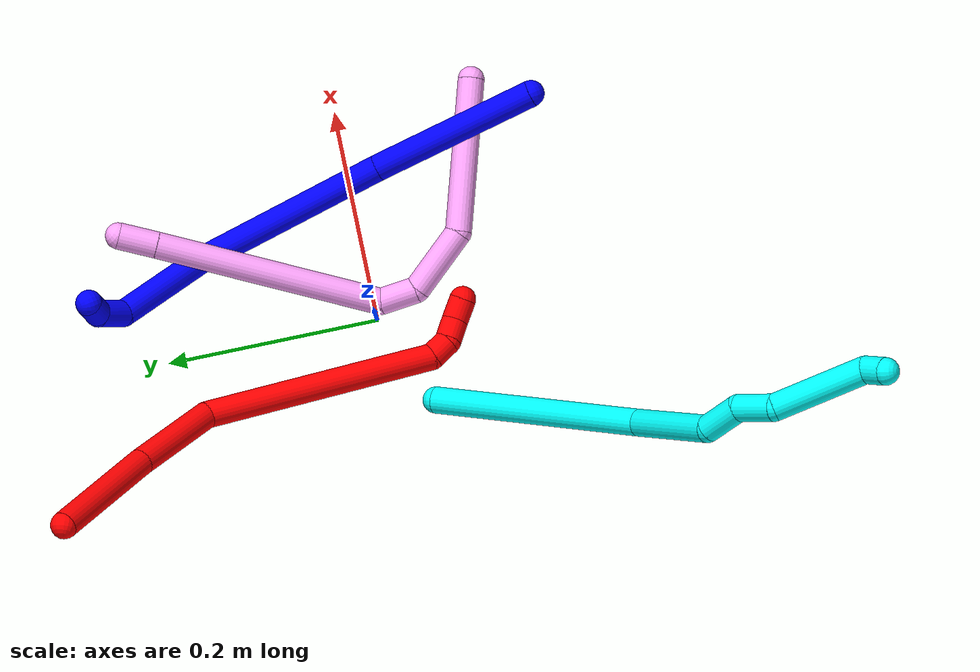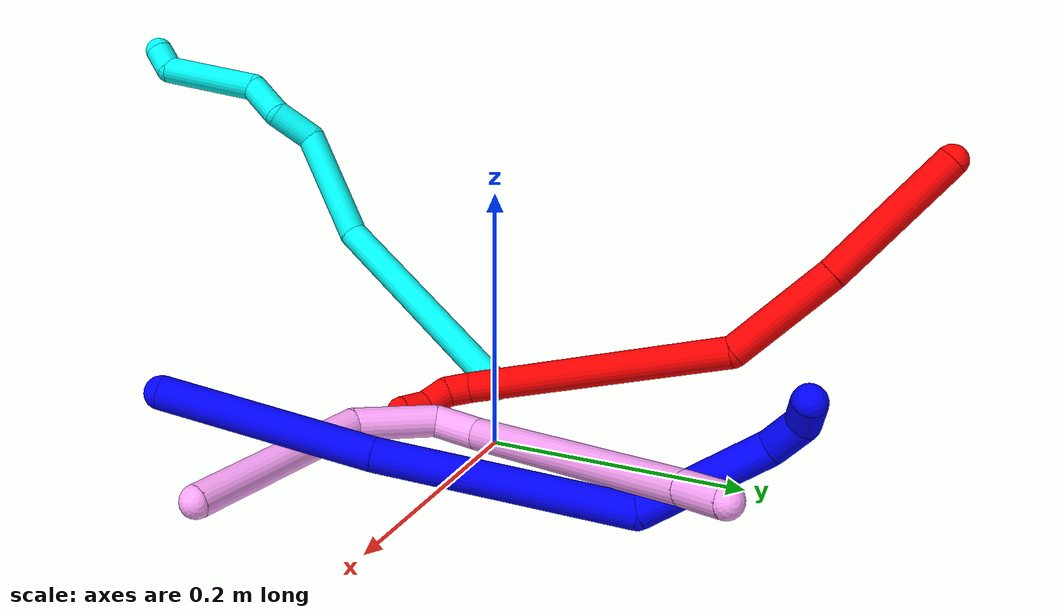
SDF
<sdf version="1.7">
 <world name="default">
  <plugin name="TubeGeneratorPlugin" filename="libtube_generator_plugin.so"/>
  <model name="photoneo_s_sensor">
   <static>1</static>
   <pose>0 0 2 1.57079 1.57079 3.14159</pose>
   <link name="link">
    <inertial><mass>0.1</mass></inertial>
    <sensor name="sensor" type="depth">
     <update_rate>30</update_rate>
     <camera>
      <horizontal_fov>1.22</horizontal_fov>
      <image><width>1920</width><height>1200</height><format>B8G8R8</format></image>
      <clip><near>0.1</near><far>4</far></clip>
      <depth_camera><output>points</output></depth_camera>
     </camera>
     <plugin name="camera_plugin" filename="libgazebo_ros_depth_camera.so">
      <baseline>0.2</baseline>
      <alwaysOn>1</alwaysOn>
      <updateRate>0.0</updateRate>
      <cameraName>camera_ir</cameraName>
      <imageTopicName>/camera/color/image_raw</imageTopicName>
      <cameraInfoTopicName>/camera/color/camera_info</cameraInfoTopicName>
      <depthImageTopicName>/camera/depth/image_raw</depthImageTopicName>
      <depthImageCameraInfoTopicName>/camera/depth/camera_info</depthImageCameraInfoTopicName>
      <pointCloudTopicName>/camera/depth/points</pointCloudTopicName>
      <frameName>fr_optical</frameName>
      <pointCloudCutoff>0.1</pointCloudCutoff>
      <pointCloudCutoffMax>2.0</pointCloudCutoffMax>
      <distortionK1>0</distortionK1>
      <distortionK2>0</distortionK2>
      <distortionK3>0</distortionK3>
      <distortionT1>0</distortionT1>
      <distortionT2>0</distortionT2>
      <CxPrime>0</CxPrime>
      <Cx>0</Cx>
      <Cy>0</Cy>
      <focalLength>0</focalLength>
      <hackBaseline>0</hackBaseline>
     </plugin>
    </sensor>
   </link>
  </model>
  <gravity>0 0 -9.8</gravity>
  <magnetic_field>6e-06 2.3e-05 -4.2e-05</magnetic_field>
  <atmosphere type="adiabatic"/>
  <physics name="default_physics" default="0" type="ode">
   <max_step_size>0.003</max_step_size>
   <real_time_factor>1</real_time_factor>
   <real_time_update_rate>1000</real_time_update_rate>
   <max_contacts>10000</max_contacts>
   <ode>
    <solver>
     <type>quick</type>
     <iters>100</iters>
     <sor>1.3</sor>
     <use_dynamic_moi_rescaling>0</use_dynamic_moi_rescaling>
    </solver>
    <constraints>
     <contact_max_correcting_vel>0</contact_max_correcting_vel>
     <contact_surface_layer>0.001</contact_surface_layer>
     <cfm>0</cfm>
     <erp>0.2</erp>
    </constraints>
   </ode>
  </physics>
  <scene><ambient>0.4 0.4 0.4 1</ambient><background>0.7 0.7 0.7 1</background><shadows>0</shadows></scene>
  <audio><device>default</device></audio>
  <spherical_coordinates>
   <surface_model>EARTH_WGS84</surface_model>
   <latitude_deg>0</latitude_deg>
   <longitude_deg>0</longitude_deg>
   <elevation>0</elevation>
   <heading_deg>0</heading_deg>
  </spherical_coordinates>
  <model name="bin">
   <static>1</static>
   <link name="bottom">
    <collision name="collision-bottom">
     <pose>0 0 -0.01 0 -0 0</pose>
     <geometry><box><size>0.8 0.6 0.02</size></box></geometry>
     <surface>
      <friction><ode><mu>100</mu><mu2>100</mu2></ode></friction>
      <contact><collide_bitmask>65535</collide_bitmask></contact>
     </surface>
    </collision>
   </link>
   <link name="west_wall">
    <collision name="collision-west_wall">
     <pose>-0.41 0 0.1 0 -0 0</pose>
     <geometry><box><size>0.02 0.6 0.2</size></box></geometry>
     <surface>
      <friction><ode><mu>100</mu><mu2>100</mu2></ode></friction>
      <contact><collide_bitmask>65535</collide_bitmask></contact>
     </surface>
    </collision>
   </link>
   <link name="east_wall">
    <collision name="collision-east_wall">
     <pose>0.41 0 0.1 0 -0 0</pose>
     <geometry><box><size>0.02 0.6 0.2</size></box></geometry>
     <surface>
      <friction><ode><mu>100</mu><mu2>100</mu2></ode></friction>
      <contact><collide_bitmask>65535</collide_bitmask></contact>
     </surface>
    </collision>
   </link>
   <link name="south_wall">
    <collision name="collision-south_wall">
     <pose>0 -0.31 0.1 0 -0 0</pose>
     <geometry><box><size>0.8 0.02 0.2</size></box></geometry>
     <surface>
      <friction><ode><mu>100</mu><mu2>100</mu2></ode></friction>
      <contact><collide_bitmask>65535</collide_bitmask></contact>
     </surface>
    </collision>
   </link>
   <link name="north_wall">
    <collision name="collision-north_wall">
     <pose>0 0.31 0.1 0 -0 0</pose>
     <geometry><box><size>0.8 0.02 0.2</size></box></geometry>
     <surface>
      <friction><ode><mu>100</mu><mu2>100</mu2></ode></friction>
      <contact><collide_bitmask>65535</collide_bitmask></contact>
     </surface>
    </collision>
   </link>
  </model>
  <model name="1">
   <static>0</static>
   <link name="1">
    <collision name="collision-cylinder-e_1_1_4">
     <pose>-0.007153 0.045804 0.065463 -0.610516 -0.089291 0.028153</pose>
     <geometry><cylinder><radius>0.0125</radius><length>0.160432</length></cylinder></geometry>
     <surface>
      <friction><ode><mu>1.16</mu><mu2>1.16</mu2><slip1>0</slip1><slip2>0</slip2></ode></friction>
      <contact><ode><kp>1e+06</kp><kd>1</kd><max_vel>0</max_vel><min_depth>0.001</min_depth></ode></contact>
     </surface>
    </collision>
    <visual name="visual-cylinder-e_1_1_4">
     <pose>-0.007153 0.045804 0.065463 -0.610516 -0.089291 0.028153</pose>
     <geometry><cylinder><radius>0.0125</radius><length>0.160432</length></cylinder></geometry>
     <material><ambient>0 0 1 1</ambient></material>
    </visual>
    <collision name="collision-cylinder-e_2_4_5">
     <pose>-0.025452 0.140062 0.209717 -0.551356 -0.119917 0.03396</pose>
     <geometry><cylinder><radius>0.0125</radius><length>0.186333</length></cylinder></geometry>
     <surface>
      <friction><ode><mu>1.16</mu><mu2>1.16</mu2><slip1>0</slip1><slip2>0</slip2></ode></friction>
      <contact><ode><kp>1e+06</kp><kd>1</kd><max_vel>0</max_vel><min_depth>0.001</min_depth></ode></contact>
     </surface>
    </collision>
    <visual name="visual-cylinder-e_2_4_5">
     <pose>-0.025452 0.140062 0.209717 -0.551356 -0.119917 0.03396</pose>
     <geometry><cylinder><radius>0.0125</radius><length>0.186333</length></cylinder></geometry>
     <material><ambient>0 0 1 1</ambient></material>
    </visual>
    <collision name="collision-cylinder-e_3_5_6">
     <pose>-0.047055 0.182652 0.337046 0.120214 -0.210721 -0.012728</pose>
     <geometry><cylinder><radius>0.0125</radius><length>0.099994</length></cylinder></geometry>
     <surface>
      <friction><ode><mu>1.16</mu><mu2>1.16</mu2><slip1>0</slip1><slip2>0</slip2></ode></friction>
      <contact><ode><kp>1e+06</kp><kd>1</kd><max_vel>0</max_vel><min_depth>0.001</min_depth></ode></contact>
     </surface>
    </collision>
    <visual name="visual-cylinder-e_3_5_6">
     <pose>-0.047055 0.182652 0.337046 0.120214 -0.210721 -0.012728</pose>
     <geometry><cylinder><radius>0.0125</radius><length>0.099994</length></cylinder></geometry>
     <material><ambient>0 0 1 1</ambient></material>
    </visual>
    <collision name="collision-cylinder-e_4_6_7">
     <pose>-0.05354 0.170855 0.399268 0.409191 0.26028 0.054302</pose>
     <geometry><cylinder><radius>0.0125</radius><length>0.030872</length></cylinder></geometry>
     <surface>
      <friction><ode><mu>1.16</mu><mu2>1.16</mu2><slip1>0</slip1><slip2>0</slip2></ode></friction>
      <contact><ode><kp>1e+06</kp><kd>1</kd><max_vel>0</max_vel><min_depth>0.001</min_depth></ode></contact>
     </surface>
    </collision>
    <visual name="visual-cylinder-e_4_6_7">
     <pose>-0.05354 0.170855 0.399268 0.409191 0.26028 0.054302</pose>
     <geometry><cylinder><radius>0.0125</radius><length>0.030872</length></cylinder></geometry>
     <material><ambient>0 0 1 1</ambient></material>
    </visual>
    <collision name="collision-cylinder-e_5_7_2">
     <pose>-0.0435 0.157263 0.418399 0.95256 0.573309 0.301829</pose>
     <geometry><cylinder><radius>0.0125</radius><length>0.02237</length></cylinder></geometry>
     <surface>
      <friction><ode><mu>1.16</mu><mu2>1.16</mu2><slip1>0</slip1><slip2>0</slip2></ode></friction>
      <contact><ode><kp>1e+06</kp><kd>1</kd><max_vel>0</max_vel><min_depth>0.001</min_depth></ode></contact>
     </surface>
    </collision>
    <visual name="visual-cylinder-e_5_7_2">
     <pose>-0.0435 0.157263 0.418399 0.95256 0.573309 0.301829</pose>
     <geometry><cylinder><radius>0.0125</radius><length>0.02237</length></cylinder></geometry>
     <material><ambient>0 0 1 1</ambient></material>
    </visual>
    <collision name="collision-sphere-2">
     <pose>-0.037433 0.149605 0.423845 0 -0 0</pose>
     <geometry><sphere><radius>0.0125</radius></sphere></geometry>
     <surface>
      <friction><ode><mu>1.16</mu><mu2>1.16</mu2><slip1>0</slip1><slip2>0</slip2></ode></friction>
      <contact><ode><kp>1e+06</kp><kd>1</kd><max_vel>0</max_vel><min_depth>0.001</min_depth></ode></contact>
     </surface>
    </collision>
    <visual name="visual-sphere-2">
     <pose>-0.037433 0.149605 0.423845 0 -0 0</pose>
     <geometry><sphere><radius>0.0125</radius></sphere></geometry>
     <material><ambient>0 0 1 1</ambient></material>
    </visual>
    <collision name="collision-sphere-7">
     <pose>-0.049567 0.16492 0.412953 0 -0 0</pose>
     <geometry><sphere><radius>0.0125</radius></sphere></geometry>
     <surface>
      <friction><ode><mu>1.16</mu><mu2>1.16</mu2><slip1>0</slip1><slip2>0</slip2></ode></friction>
      <contact><ode><kp>1e+06</kp><kd>1</kd><max_vel>0</max_vel><min_depth>0.001</min_depth></ode></contact>
     </surface>
    </collision>
    <visual name="visual-sphere-7">
     <pose>-0.049567 0.16492 0.412953 0 -0 0</pose>
     <geometry><sphere><radius>0.0125</radius></sphere></geometry>
     <material><ambient>0 0 1 1</ambient></material>
    </visual>
    <collision name="collision-sphere-6">
     <pose>-0.057512 0.176789 0.385584 0 -0 0</pose>
     <geometry><sphere><radius>0.0125</radius></sphere></geometry>
     <surface>
      <friction><ode><mu>1.16</mu><mu2>1.16</mu2><slip1>0</slip1><slip2>0</slip2></ode></friction>
      <contact><ode><kp>1e+06</kp><kd>1</kd><max_vel>0</max_vel><min_depth>0.001</min_depth></ode></contact>
     </surface>
    </collision>
    <visual name="visual-sphere-6">
     <pose>-0.057512 0.176789 0.385584 0 -0 0</pose>
     <geometry><sphere><radius>0.0125</radius></sphere></geometry>
     <material><ambient>0 0 1 1</ambient></material>
    </visual>
    <collision name="collision-sphere-5">
     <pose>-0.036597 0.188516 0.288508 0 -0 0</pose>
     <geometry><sphere><radius>0.0125</radius></sphere></geometry>
     <surface>
      <friction><ode><mu>1.16</mu><mu2>1.16</mu2><slip1>0</slip1><slip2>0</slip2></ode></friction>
      <contact><ode><kp>1e+06</kp><kd>1</kd><max_vel>0</max_vel><min_depth>0.001</min_depth></ode></contact>
     </surface>
    </collision>
    <visual name="visual-sphere-5">
     <pose>-0.036597 0.188516 0.288508 0 -0 0</pose>
     <geometry><sphere><radius>0.0125</radius></sphere></geometry>
     <material><ambient>0 0 1 1</ambient></material>
    </visual>
    <collision name="collision-sphere-1">
     <geometry><sphere><radius>0.0125</radius></sphere></geometry>
     <surface>
      <friction><ode><mu>1.16</mu><mu2>1.16</mu2><slip1>0</slip1><slip2>0</slip2></ode></friction>
      <contact><ode><kp>1e+06</kp><kd>1</kd><max_vel>0</max_vel><min_depth>0.001</min_depth></ode></contact>
     </surface>
    </collision>
    <visual name="visual-sphere-1">
     <geometry><sphere><radius>0.0125</radius></sphere></geometry>
     <material><ambient>0 0 1 1</ambient></material>
    </visual>
    <collision name="collision-sphere-4">
     <pose>-0.014306 0.091608 0.130926 0 -0 0</pose>
     <geometry><sphere><radius>0.0125</radius></sphere></geometry>
     <surface>
      <friction><ode><mu>1.16</mu><mu2>1.16</mu2><slip1>0</slip1><slip2>0</slip2></ode></friction>
      <contact><ode><kp>1e+06</kp><kd>1</kd><max_vel>0</max_vel><min_depth>0.001</min_depth></ode></contact>
     </surface>
    </collision>
    <visual name="visual-sphere-4">
     <pose>-0.014306 0.091608 0.130926 0 -0 0</pose>
     <geometry><sphere><radius>0.0125</radius></sphere></geometry>
     <material><ambient>0 0 1 1</ambient></material>
    </visual>
    <inertial>
     <pose>-0.026442 0.121006 0.209935 0 -0 0</pose>
     <mass>0.5</mass>
     <inertia>
      <ixx>0.001006</ixx>
      <ixy>0</ixy>
      <ixz>0</ixz>
      <iyy>0.000885</iyy>
      <iyz>0</iyz>
      <izz>-0.000325</izz>
     </inertia>
    </inertial>
   </link>
   <pose>0.172214 -0.181837 0.073138 -1.16165 -0.091105 0.155801</pose>
  </model>
  <model name="2">
   <static>0</static>
   <link name="2">
    <collision name="collision-cylinder-e_1_1_4">
     <pose>-0.006117 -0.041176 -0.042879 2.37645 -0.102528 -0.253649</pose>
     <geometry><cylinder><radius>0.0125</radius><length>0.119525</length></cylinder></geometry>
     <surface>
      <friction><ode><mu>1.16</mu><mu2>1.16</mu2><slip1>0</slip1><slip2>0</slip2></ode></friction>
      <contact><ode><kp>1e+06</kp><kd>1</kd><max_vel>0</max_vel><min_depth>0.001</min_depth></ode></contact>
     </surface>
    </collision>
    <visual name="visual-cylinder-e_1_1_4">
     <pose>-0.006117 -0.041176 -0.042879 2.37645 -0.102528 -0.253649</pose>
     <geometry><cylinder><radius>0.0125</radius><length>0.119525</length></cylinder></geometry>
     <material><ambient>1 0 0 1</ambient></material>
    </visual>
    <collision name="collision-cylinder-e_2_4_5">
     <pose>-0.012794 -0.115755 -0.118647 2.34845 -0.011954 -0.028546</pose>
     <geometry><cylinder><radius>0.0125</radius><length>0.093758</length></cylinder></geometry>
     <surface>
      <friction><ode><mu>1.16</mu><mu2>1.16</mu2><slip1>0</slip1><slip2>0</slip2></ode></friction>
      <contact><ode><kp>1e+06</kp><kd>1</kd><max_vel>0</max_vel><min_depth>0.001</min_depth></ode></contact>
     </surface>
    </collision>
    <visual name="visual-cylinder-e_2_4_5">
     <pose>-0.012794 -0.115755 -0.118647 2.34845 -0.011954 -0.028546</pose>
     <geometry><cylinder><radius>0.0125</radius><length>0.093758</length></cylinder></geometry>
     <material><ambient>1 0 0 1</ambient></material>
    </visual>
    <collision name="collision-cylinder-e_3_5_6">
     <pose>0.037719 -0.236282 -0.198018 2.0609 0.477304 0.770559</pose>
     <geometry><cylinder><radius>0.0125</radius><length>0.222351</length></cylinder></geometry>
     <surface>
      <friction><ode><mu>1.16</mu><mu2>1.16</mu2><slip1>0</slip1><slip2>0</slip2></ode></friction>
      <contact><ode><kp>1e+06</kp><kd>1</kd><max_vel>0</max_vel><min_depth>0.001</min_depth></ode></contact>
     </surface>
    </collision>
    <visual name="visual-cylinder-e_3_5_6">
     <pose>0.037719 -0.236282 -0.198018 2.0609 0.477304 0.770559</pose>
     <geometry><cylinder><radius>0.0125</radius><length>0.222351</length></cylinder></geometry>
     <material><ambient>1 0 0 1</ambient></material>
    </visual>
    <collision name="collision-cylinder-e_4_6_7">
     <pose>0.093643 -0.327783 -0.252569 2.64475 0.486324 1.54851</pose>
     <geometry><cylinder><radius>0.0125</radius><length>0.020762</length></cylinder></geometry>
     <surface>
      <friction><ode><mu>1.16</mu><mu2>1.16</mu2><slip1>0</slip1><slip2>0</slip2></ode></friction>
      <contact><ode><kp>1e+06</kp><kd>1</kd><max_vel>0</max_vel><min_depth>0.001</min_depth></ode></contact>
     </surface>
    </collision>
    <visual name="visual-cylinder-e_4_6_7">
     <pose>0.093643 -0.327783 -0.252569 2.64475 0.486324 1.54851</pose>
     <geometry><cylinder><radius>0.0125</radius><length>0.020762</length></cylinder></geometry>
     <material><ambient>1 0 0 1</ambient></material>
    </visual>
    <collision name="collision-cylinder-e_5_7_8">
     <pose>0.099001 -0.334369 -0.271273 2.93655 0.046589 0.445404</pose>
     <geometry><cylinder><radius>0.0125</radius><length>0.021752</length></cylinder></geometry>
     <surface>
      <friction><ode><mu>1.16</mu><mu2>1.16</mu2><slip1>0</slip1><slip2>0</slip2></ode></friction>
      <contact><ode><kp>1e+06</kp><kd>1</kd><max_vel>0</max_vel><min_depth>0.001</min_depth></ode></contact>
     </surface>
    </collision>
    <visual name="visual-cylinder-e_5_7_8">
     <pose>0.099001 -0.334369 -0.271273 2.93655 0.046589 0.445404</pose>
     <geometry><cylinder><radius>0.0125</radius><length>0.021752</length></cylinder></geometry>
     <material><ambient>1 0 0 1</ambient></material>
    </visual>
    <collision name="collision-cylinder-e_6_8_2">
     <pose>0.103425 -0.336679 -0.29211 3.13198 0.366652 3.08976</pose>
     <geometry><cylinder><radius>0.0125</radius><length>0.021853</length></cylinder></geometry>
     <surface>
      <friction><ode><mu>1.16</mu><mu2>1.16</mu2><slip1>0</slip1><slip2>0</slip2></ode></friction>
      <contact><ode><kp>1e+06</kp><kd>1</kd><max_vel>0</max_vel><min_depth>0.001</min_depth></ode></contact>
     </surface>
    </collision>
    <visual name="visual-cylinder-e_6_8_2">
     <pose>0.103425 -0.336679 -0.29211 3.13198 0.366652 3.08976</pose>
     <geometry><cylinder><radius>0.0125</radius><length>0.021853</length></cylinder></geometry>
     <material><ambient>1 0 0 1</ambient></material>
    </visual>
    <collision name="collision-sphere-2">
     <pose>0.107342 -0.336777 -0.302309 0 -0 0</pose>
     <geometry><sphere><radius>0.0125</radius></sphere></geometry>
     <surface>
      <friction><ode><mu>1.16</mu><mu2>1.16</mu2><slip1>0</slip1><slip2>0</slip2></ode></friction>
      <contact><ode><kp>1e+06</kp><kd>1</kd><max_vel>0</max_vel><min_depth>0.001</min_depth></ode></contact>
     </surface>
    </collision>
    <visual name="visual-sphere-2">
     <pose>0.107342 -0.336777 -0.302309 0 -0 0</pose>
     <geometry><sphere><radius>0.0125</radius></sphere></geometry>
     <material><ambient>1 0 0 1</ambient></material>
    </visual>
    <collision name="collision-sphere-4">
     <pose>-0.012233 -0.082353 -0.085759 0 -0 0</pose>
     <geometry><sphere><radius>0.0125</radius></sphere></geometry>
     <surface>
      <friction><ode><mu>1.16</mu><mu2>1.16</mu2><slip1>0</slip1><slip2>0</slip2></ode></friction>
      <contact><ode><kp>1e+06</kp><kd>1</kd><max_vel>0</max_vel><min_depth>0.001</min_depth></ode></contact>
     </surface>
    </collision>
    <visual name="visual-sphere-4">
     <pose>-0.012233 -0.082353 -0.085759 0 -0 0</pose>
     <geometry><sphere><radius>0.0125</radius></sphere></geometry>
     <material><ambient>1 0 0 1</ambient></material>
    </visual>
    <collision name="collision-sphere-1">
     <geometry><sphere><radius>0.0125</radius></sphere></geometry>
     <surface>
      <friction><ode><mu>1.16</mu><mu2>1.16</mu2><slip1>0</slip1><slip2>0</slip2></ode></friction>
      <contact><ode><kp>1e+06</kp><kd>1</kd><max_vel>0</max_vel><min_depth>0.001</min_depth></ode></contact>
     </surface>
    </collision>
    <visual name="visual-sphere-1">
     <geometry><sphere><radius>0.0125</radius></sphere></geometry>
     <material><ambient>1 0 0 1</ambient></material>
    </visual>
    <collision name="collision-sphere-8">
     <pose>0.099508 -0.336581 -0.28191 0 -0 0</pose>
     <geometry><sphere><radius>0.0125</radius></sphere></geometry>
     <surface>
      <friction><ode><mu>1.16</mu><mu2>1.16</mu2><slip1>0</slip1><slip2>0</slip2></ode></friction>
      <contact><ode><kp>1e+06</kp><kd>1</kd><max_vel>0</max_vel><min_depth>0.001</min_depth></ode></contact>
     </surface>
    </collision>
    <visual name="visual-sphere-8">
     <pose>0.099508 -0.336581 -0.28191 0 -0 0</pose>
     <geometry><sphere><radius>0.0125</radius></sphere></geometry>
     <material><ambient>1 0 0 1</ambient></material>
    </visual>
    <collision name="collision-sphere-5">
     <pose>-0.013354 -0.149156 -0.151535 0 -0 0</pose>
     <geometry><sphere><radius>0.0125</radius></sphere></geometry>
     <surface>
      <friction><ode><mu>1.16</mu><mu2>1.16</mu2><slip1>0</slip1><slip2>0</slip2></ode></friction>
      <contact><ode><kp>1e+06</kp><kd>1</kd><max_vel>0</max_vel><min_depth>0.001</min_depth></ode></contact>
     </surface>
    </collision>
    <visual name="visual-sphere-5">
     <pose>-0.013354 -0.149156 -0.151535 0 -0 0</pose>
     <geometry><sphere><radius>0.0125</radius></sphere></geometry>
     <material><ambient>1 0 0 1</ambient></material>
    </visual>
    <collision name="collision-sphere-6">
     <pose>0.088791 -0.323408 -0.244502 0 -0 0</pose>
     <geometry><sphere><radius>0.0125</radius></sphere></geometry>
     <surface>
      <friction><ode><mu>1.16</mu><mu2>1.16</mu2><slip1>0</slip1><slip2>0</slip2></ode></friction>
      <contact><ode><kp>1e+06</kp><kd>1</kd><max_vel>0</max_vel><min_depth>0.001</min_depth></ode></contact>
     </surface>
    </collision>
    <visual name="visual-sphere-6">
     <pose>0.088791 -0.323408 -0.244502 0 -0 0</pose>
     <geometry><sphere><radius>0.0125</radius></sphere></geometry>
     <material><ambient>1 0 0 1</ambient></material>
    </visual>
    <collision name="collision-sphere-7">
     <pose>0.098495 -0.332157 -0.260637 0 -0 0</pose>
     <geometry><sphere><radius>0.0125</radius></sphere></geometry>
     <surface>
      <friction><ode><mu>1.16</mu><mu2>1.16</mu2><slip1>0</slip1><slip2>0</slip2></ode></friction>
      <contact><ode><kp>1e+06</kp><kd>1</kd><max_vel>0</max_vel><min_depth>0.001</min_depth></ode></contact>
     </surface>
    </collision>
    <visual name="visual-sphere-7">
     <pose>0.098495 -0.332157 -0.260637 0 -0 0</pose>
     <geometry><sphere><radius>0.0125</radius></sphere></geometry>
     <material><ambient>1 0 0 1</ambient></material>
    </visual>
    <inertial>
     <pose>0.025628 -0.179496 -0.155613 0 -0 0</pose>
     <mass>0.5</mass>
     <inertia>
      <ixx>0.001347</ixx>
      <ixy>0</ixy>
      <ixz>0</ixz>
      <iyy>0.000308</iyy>
      <iyz>0</iyz>
      <izz>0.000445</izz>
     </inertia>
    </inertial>
   </link>
   <pose>-0.135496 0.306947 0.227104 1.15313 -0.821393 -1.57512</pose>
  </model>
  <model name="3">
   <static>0</static>
   <link name="3">
    <collision name="collision-cylinder-e_1_1_4">
     <pose>0.009422 -0.007922 0.105045 0.075274 0.089205 0.003361</pose>
     <geometry><cylinder><radius>0.0125</radius><length>0.211528</length></cylinder></geometry>
     <surface>
      <friction><ode><mu>1.16</mu><mu2>1.16</mu2><slip1>0</slip1><slip2>0</slip2></ode></friction>
      <contact><ode><kp>1e+06</kp><kd>1</kd><max_vel>0</max_vel><min_depth>0.001</min_depth></ode></contact>
     </surface>
    </collision>
    <visual name="visual-cylinder-e_1_1_4">
     <pose>0.009422 -0.007922 0.105045 0.075274 0.089205 0.003361</pose>
     <geometry><cylinder><radius>0.0125</radius><length>0.211528</length></cylinder></geometry>
     <material><ambient>0.003922 1 0.996078 1</ambient></material>
    </visual>
    <collision name="collision-cylinder-e_2_4_5">
     <pose>0.006884 -0.035203 0.255396 0.403816 -0.238159 -0.048972</pose>
     <geometry><cylinder><radius>0.0125</radius><length>0.101399</length></cylinder></geometry>
     <surface>
      <friction><ode><mu>1.16</mu><mu2>1.16</mu2><slip1>0</slip1><slip2>0</slip2></ode></friction>
      <contact><ode><kp>1e+06</kp><kd>1</kd><max_vel>0</max_vel><min_depth>0.001</min_depth></ode></contact>
     </surface>
    </collision>
    <visual name="visual-cylinder-e_2_4_5">
     <pose>0.006884 -0.035203 0.255396 0.403816 -0.238159 -0.048972</pose>
     <geometry><cylinder><radius>0.0125</radius><length>0.101399</length></cylinder></geometry>
     <material><ambient>0.003922 1 0.996078 1</ambient></material>
    </visual>
    <collision name="collision-cylinder-e_3_5_6">
     <pose>-0.014117 -0.051216 0.317472 -0.196946 -0.486278 0.049</pose>
     <geometry><cylinder><radius>0.0125</radius><length>0.038685</length></cylinder></geometry>
     <surface>
      <friction><ode><mu>1.16</mu><mu2>1.16</mu2><slip1>0</slip1><slip2>0</slip2></ode></friction>
      <contact><ode><kp>1e+06</kp><kd>1</kd><max_vel>0</max_vel><min_depth>0.001</min_depth></ode></contact>
     </surface>
    </collision>
    <visual name="visual-cylinder-e_3_5_6">
     <pose>-0.014117 -0.051216 0.317472 -0.196946 -0.486278 0.049</pose>
     <geometry><cylinder><radius>0.0125</radius><length>0.038685</length></cylinder></geometry>
     <material><ambient>0.003922 1 0.996078 1</ambient></material>
    </visual>
    <collision name="collision-cylinder-e_4_6_7">
     <pose>-0.024684 -0.049965 0.352812 0.112322 -0.08158 -0.004589</pose>
     <geometry><cylinder><radius>0.0125</radius><length>0.0375</length></cylinder></geometry>
     <surface>
      <friction><ode><mu>1.16</mu><mu2>1.16</mu2><slip1>0</slip1><slip2>0</slip2></ode></friction>
      <contact><ode><kp>1e+06</kp><kd>1</kd><max_vel>0</max_vel><min_depth>0.001</min_depth></ode></contact>
     </surface>
    </collision>
    <visual name="visual-cylinder-e_4_6_7">
     <pose>-0.024684 -0.049965 0.352812 0.112322 -0.08158 -0.004589</pose>
     <geometry><cylinder><radius>0.0125</radius><length>0.0375</length></cylinder></geometry>
     <material><ambient>0.003922 1 0.996078 1</ambient></material>
    </visual>
    <collision name="collision-cylinder-e_5_7_8">
     <pose>-0.029591 -0.031317 0.409781 -0.495275 -0.077261 0.019543</pose>
     <geometry><cylinder><radius>0.0125</radius><length>0.087549</length></cylinder></geometry>
     <surface>
      <friction><ode><mu>1.16</mu><mu2>1.16</mu2><slip1>0</slip1><slip2>0</slip2></ode></friction>
      <contact><ode><kp>1e+06</kp><kd>1</kd><max_vel>0</max_vel><min_depth>0.001</min_depth></ode></contact>
     </surface>
    </collision>
    <visual name="visual-cylinder-e_5_7_8">
     <pose>-0.029591 -0.031317 0.409781 -0.495275 -0.077261 0.019543</pose>
     <geometry><cylinder><radius>0.0125</radius><length>0.087549</length></cylinder></geometry>
     <material><ambient>0.003922 1 0.996078 1</ambient></material>
    </visual>
    <collision name="collision-cylinder-e_6_8_2">
     <pose>-0.034431 -0.013775 0.459307 0.280113 -0.125536 -0.017721</pose>
     <geometry><cylinder><radius>0.0125</radius><length>0.023338</length></cylinder></geometry>
     <surface>
      <friction><ode><mu>1.16</mu><mu2>1.16</mu2><slip1>0</slip1><slip2>0</slip2></ode></friction>
      <contact><ode><kp>1e+06</kp><kd>1</kd><max_vel>0</max_vel><min_depth>0.001</min_depth></ode></contact>
     </surface>
    </collision>
    <visual name="visual-cylinder-e_6_8_2">
     <pose>-0.034431 -0.013775 0.459307 0.280113 -0.125536 -0.017721</pose>
     <geometry><cylinder><radius>0.0125</radius><length>0.023338</length></cylinder></geometry>
     <material><ambient>0.003922 1 0.996078 1</ambient></material>
    </visual>
    <collision name="collision-sphere-2">
     <pose>-0.035892 -0.016975 0.470433 0 -0 0</pose>
     <geometry><sphere><radius>0.0125</radius></sphere></geometry>
     <surface>
      <friction><ode><mu>1.16</mu><mu2>1.16</mu2><slip1>0</slip1><slip2>0</slip2></ode></friction>
      <contact><ode><kp>1e+06</kp><kd>1</kd><max_vel>0</max_vel><min_depth>0.001</min_depth></ode></contact>
     </surface>
    </collision>
    <visual name="visual-sphere-2">
     <pose>-0.035892 -0.016975 0.470433 0 -0 0</pose>
     <geometry><sphere><radius>0.0125</radius></sphere></geometry>
     <material><ambient>0.003922 1 0.996078 1</ambient></material>
    </visual>
    <collision name="collision-sphere-4">
     <pose>0.018844 -0.015844 0.21009 0 -0 0</pose>
     <geometry><sphere><radius>0.0125</radius></sphere></geometry>
     <surface>
      <friction><ode><mu>1.16</mu><mu2>1.16</mu2><slip1>0</slip1><slip2>0</slip2></ode></friction>
      <contact><ode><kp>1e+06</kp><kd>1</kd><max_vel>0</max_vel><min_depth>0.001</min_depth></ode></contact>
     </surface>
    </collision>
    <visual name="visual-sphere-4">
     <pose>0.018844 -0.015844 0.21009 0 -0 0</pose>
     <geometry><sphere><radius>0.0125</radius></sphere></geometry>
     <material><ambient>0.003922 1 0.996078 1</ambient></material>
    </visual>
    <collision name="collision-sphere-1">
     <geometry><sphere><radius>0.0125</radius></sphere></geometry>
     <surface>
      <friction><ode><mu>1.16</mu><mu2>1.16</mu2><slip1>0</slip1><slip2>0</slip2></ode></friction>
      <contact><ode><kp>1e+06</kp><kd>1</kd><max_vel>0</max_vel><min_depth>0.001</min_depth></ode></contact>
     </surface>
    </collision>
    <visual name="visual-sphere-1">
     <geometry><sphere><radius>0.0125</radius></sphere></geometry>
     <material><ambient>0.003922 1 0.996078 1</ambient></material>
    </visual>
    <collision name="collision-sphere-8">
     <pose>-0.032969 -0.010574 0.448181 0 -0 0</pose>
     <geometry><sphere><radius>0.0125</radius></sphere></geometry>
     <surface>
      <friction><ode><mu>1.16</mu><mu2>1.16</mu2><slip1>0</slip1><slip2>0</slip2></ode></friction>
      <contact><ode><kp>1e+06</kp><kd>1</kd><max_vel>0</max_vel><min_depth>0.001</min_depth></ode></contact>
     </surface>
    </collision>
    <visual name="visual-sphere-8">
     <pose>-0.032969 -0.010574 0.448181 0 -0 0</pose>
     <geometry><sphere><radius>0.0125</radius></sphere></geometry>
     <material><ambient>0.003922 1 0.996078 1</ambient></material>
    </visual>
    <collision name="collision-sphere-5">
     <pose>-0.005077 -0.054562 0.300702 0 -0 0</pose>
     <geometry><sphere><radius>0.0125</radius></sphere></geometry>
     <surface>
      <friction><ode><mu>1.16</mu><mu2>1.16</mu2><slip1>0</slip1><slip2>0</slip2></ode></friction>
      <contact><ode><kp>1e+06</kp><kd>1</kd><max_vel>0</max_vel><min_depth>0.001</min_depth></ode></contact>
     </surface>
    </collision>
    <visual name="visual-sphere-5">
     <pose>-0.005077 -0.054562 0.300702 0 -0 0</pose>
     <geometry><sphere><radius>0.0125</radius></sphere></geometry>
     <material><ambient>0.003922 1 0.996078 1</ambient></material>
    </visual>
    <collision name="collision-sphere-6">
     <pose>-0.023156 -0.04787 0.334242 0 -0 0</pose>
     <geometry><sphere><radius>0.0125</radius></sphere></geometry>
     <surface>
      <friction><ode><mu>1.16</mu><mu2>1.16</mu2><slip1>0</slip1><slip2>0</slip2></ode></friction>
      <contact><ode><kp>1e+06</kp><kd>1</kd><max_vel>0</max_vel><min_depth>0.001</min_depth></ode></contact>
     </surface>
    </collision>
    <visual name="visual-sphere-6">
     <pose>-0.023156 -0.04787 0.334242 0 -0 0</pose>
     <geometry><sphere><radius>0.0125</radius></sphere></geometry>
     <material><ambient>0.003922 1 0.996078 1</ambient></material>
    </visual>
    <collision name="collision-sphere-7">
     <pose>-0.026212 -0.052059 0.371382 0 -0 0</pose>
     <geometry><sphere><radius>0.0125</radius></sphere></geometry>
     <surface>
      <friction><ode><mu>1.16</mu><mu2>1.16</mu2><slip1>0</slip1><slip2>0</slip2></ode></friction>
      <contact><ode><kp>1e+06</kp><kd>1</kd><max_vel>0</max_vel><min_depth>0.001</min_depth></ode></contact>
     </surface>
    </collision>
    <visual name="visual-sphere-7">
     <pose>-0.026212 -0.052059 0.371382 0 -0 0</pose>
     <geometry><sphere><radius>0.0125</radius></sphere></geometry>
     <material><ambient>0.003922 1 0.996078 1</ambient></material>
    </visual>
    <inertial>
     <pose>-0.00435 -0.024327 0.240449 0 -0 0</pose>
     <mass>0.5</mass>
     <inertia>
      <ixx>0.000951</ixx>
      <ixy>0</ixy>
      <ixz>0</ixz>
      <iyy>0.000943</iyy>
      <iyz>0</iyz>
      <izz>6.2e-05</izz>
     </inertia>
    </inertial>
   </link>
   <pose>-0.084377 -0.038387 0.011499 -0.939787 0.641254 -2.9378</pose>
  </model>
  <model name="4">
   <static>0</static>
   <link name="4">
    <collision name="collision-cylinder-e_1_1_4">
     <pose>-0.001219 -0.007441 0.016398 0.425998 -0.067574 -0.01462</pose>
     <geometry><cylinder><radius>0.0125</radius><length>0.036097</length></cylinder></geometry>
     <surface>
      <friction><ode><mu>1.16</mu><mu2>1.16</mu2><slip1>0</slip1><slip2>0</slip2></ode></friction>
      <contact><ode><kp>1e+06</kp><kd>1</kd><max_vel>0</max_vel><min_depth>0.001</min_depth></ode></contact>
     </surface>
    </collision>
    <visual name="visual-cylinder-e_1_1_4">
     <pose>-0.001219 -0.007441 0.016398 0.425998 -0.067574 -0.01462</pose>
     <geometry><cylinder><radius>0.0125</radius><length>0.036097</length></cylinder></geometry>
     <material><ambient>1 0.65098 0.996078 1</ambient></material>
    </visual>
    <collision name="collision-cylinder-e_2_4_5">
     <pose>-0.011498 -0.056457 0.132359 0.395561 -0.083781 -0.016799</pose>
     <geometry><cylinder><radius>0.0125</radius><length>0.216548</length></cylinder></geometry>
     <surface>
      <friction><ode><mu>1.16</mu><mu2>1.16</mu2><slip1>0</slip1><slip2>0</slip2></ode></friction>
      <contact><ode><kp>1e+06</kp><kd>1</kd><max_vel>0</max_vel><min_depth>0.001</min_depth></ode></contact>
     </surface>
    </collision>
    <visual name="visual-cylinder-e_2_4_5">
     <pose>-0.011498 -0.056457 0.132359 0.395561 -0.083781 -0.016799</pose>
     <geometry><cylinder><radius>0.0125</radius><length>0.216548</length></cylinder></geometry>
     <material><ambient>1 0.65098 0.996078 1</ambient></material>
    </visual>
    <collision name="collision-cylinder-e_3_5_6">
     <pose>-0.024451 -0.113164 0.240914 1.03463 -0.217592 -0.124141</pose>
     <geometry><cylinder><radius>0.0125</radius><length>0.036056</length></cylinder></geometry>
     <surface>
      <friction><ode><mu>1.16</mu><mu2>1.16</mu2><slip1>0</slip1><slip2>0</slip2></ode></friction>
      <contact><ode><kp>1e+06</kp><kd>1</kd><max_vel>0</max_vel><min_depth>0.001</min_depth></ode></contact>
     </surface>
    </collision>
    <visual name="visual-cylinder-e_3_5_6">
     <pose>-0.024451 -0.113164 0.240914 1.03463 -0.217592 -0.124141</pose>
     <geometry><cylinder><radius>0.0125</radius><length>0.036056</length></cylinder></geometry>
     <material><ambient>1 0.65098 0.996078 1</ambient></material>
    </visual>
    <collision name="collision-cylinder-e_4_6_7">
     <pose>-0.047604 -0.154798 0.250125 1.56257 -0.628469 -0.623646</pose>
     <geometry><cylinder><radius>0.0125</radius><length>0.065524</length></cylinder></geometry>
     <surface>
      <friction><ode><mu>1.16</mu><mu2>1.16</mu2><slip1>0</slip1><slip2>0</slip2></ode></friction>
      <contact><ode><kp>1e+06</kp><kd>1</kd><max_vel>0</max_vel><min_depth>0.001</min_depth></ode></contact>
     </surface>
    </collision>
    <visual name="visual-cylinder-e_4_6_7">
     <pose>-0.047604 -0.154798 0.250125 1.56257 -0.628469 -0.623646</pose>
     <geometry><cylinder><radius>0.0125</radius><length>0.065524</length></cylinder></geometry>
     <material><ambient>1 0.65098 0.996078 1</ambient></material>
    </visual>
    <collision name="collision-cylinder-e_5_7_2">
     <pose>-0.122003 -0.2173 0.219098 2.2856 -0.857938 -1.57337</pose>
     <geometry><cylinder><radius>0.0125</radius><length>0.145774</length></cylinder></geometry>
     <surface>
      <friction><ode><mu>1.16</mu><mu2>1.16</mu2><slip1>0</slip1><slip2>0</slip2></ode></friction>
      <contact><ode><kp>1e+06</kp><kd>1</kd><max_vel>0</max_vel><min_depth>0.001</min_depth></ode></contact>
     </surface>
    </collision>
    <visual name="visual-cylinder-e_5_7_2">
     <pose>-0.122003 -0.2173 0.219098 2.2856 -0.857938 -1.57337</pose>
     <geometry><cylinder><radius>0.0125</radius><length>0.145774</length></cylinder></geometry>
     <material><ambient>1 0.65098 0.996078 1</ambient></material>
    </visual>
    <collision name="collision-sphere-2">
     <pose>-0.177142 -0.253299 0.187853 0 -0 0</pose>
     <geometry><sphere><radius>0.0125</radius></sphere></geometry>
     <surface>
      <friction><ode><mu>1.16</mu><mu2>1.16</mu2><slip1>0</slip1><slip2>0</slip2></ode></friction>
      <contact><ode><kp>1e+06</kp><kd>1</kd><max_vel>0</max_vel><min_depth>0.001</min_depth></ode></contact>
     </surface>
    </collision>
    <visual name="visual-sphere-2">
     <pose>-0.177142 -0.253299 0.187853 0 -0 0</pose>
     <geometry><sphere><radius>0.0125</radius></sphere></geometry>
     <material><ambient>1 0.65098 0.996078 1</ambient></material>
    </visual>
    <collision name="collision-sphere-7">
     <pose>-0.066865 -0.1813 0.250343 0 -0 0</pose>
     <geometry><sphere><radius>0.0125</radius></sphere></geometry>
     <surface>
      <friction><ode><mu>1.16</mu><mu2>1.16</mu2><slip1>0</slip1><slip2>0</slip2></ode></friction>
      <contact><ode><kp>1e+06</kp><kd>1</kd><max_vel>0</max_vel><min_depth>0.001</min_depth></ode></contact>
     </surface>
    </collision>
    <visual name="visual-sphere-7">
     <pose>-0.066865 -0.1813 0.250343 0 -0 0</pose>
     <geometry><sphere><radius>0.0125</radius></sphere></geometry>
     <material><ambient>1 0.65098 0.996078 1</ambient></material>
    </visual>
    <collision name="collision-sphere-6">
     <pose>-0.028343 -0.128297 0.249906 0 -0 0</pose>
     <geometry><sphere><radius>0.0125</radius></sphere></geometry>
     <surface>
      <friction><ode><mu>1.16</mu><mu2>1.16</mu2><slip1>0</slip1><slip2>0</slip2></ode></friction>
      <contact><ode><kp>1e+06</kp><kd>1</kd><max_vel>0</max_vel><min_depth>0.001</min_depth></ode></contact>
     </surface>
    </collision>
    <visual name="visual-sphere-6">
     <pose>-0.028343 -0.128297 0.249906 0 -0 0</pose>
     <geometry><sphere><radius>0.0125</radius></sphere></geometry>
     <material><ambient>1 0.65098 0.996078 1</ambient></material>
    </visual>
    <collision name="collision-sphere-5">
     <pose>-0.020559 -0.098031 0.231922 0 -0 0</pose>
     <geometry><sphere><radius>0.0125</radius></sphere></geometry>
     <surface>
      <friction><ode><mu>1.16</mu><mu2>1.16</mu2><slip1>0</slip1><slip2>0</slip2></ode></friction>
      <contact><ode><kp>1e+06</kp><kd>1</kd><max_vel>0</max_vel><min_depth>0.001</min_depth></ode></contact>
     </surface>
    </collision>
    <visual name="visual-sphere-5">
     <pose>-0.020559 -0.098031 0.231922 0 -0 0</pose>
     <geometry><sphere><radius>0.0125</radius></sphere></geometry>
     <material><ambient>1 0.65098 0.996078 1</ambient></material>
    </visual>
    <collision name="collision-sphere-1">
     <geometry><sphere><radius>0.0125</radius></sphere></geometry>
     <surface>
      <friction><ode><mu>1.16</mu><mu2>1.16</mu2><slip1>0</slip1><slip2>0</slip2></ode></friction>
      <contact><ode><kp>1e+06</kp><kd>1</kd><max_vel>0</max_vel><min_depth>0.001</min_depth></ode></contact>
     </surface>
    </collision>
    <visual name="visual-sphere-1">
     <geometry><sphere><radius>0.0125</radius></sphere></geometry>
     <material><ambient>1 0.65098 0.996078 1</ambient></material>
    </visual>
    <collision name="collision-sphere-4">
     <pose>-0.002437 -0.014882 0.032796 0 -0 0</pose>
     <geometry><sphere><radius>0.0125</radius></sphere></geometry>
     <surface>
      <friction><ode><mu>1.16</mu><mu2>1.16</mu2><slip1>0</slip1><slip2>0</slip2></ode></friction>
      <contact><ode><kp>1e+06</kp><kd>1</kd><max_vel>0</max_vel><min_depth>0.001</min_depth></ode></contact>
     </surface>
    </collision>
    <visual name="visual-sphere-4">
     <pose>-0.002437 -0.014882 0.032796 0 -0 0</pose>
     <geometry><sphere><radius>0.0125</radius></sphere></geometry>
     <material><ambient>1 0.65098 0.996078 1</ambient></material>
    </visual>
    <inertial>
     <pose>-0.048639 -0.116788 0.172537 0 -0 0</pose>
     <mass>0.5</mass>
     <inertia>
      <ixx>0.000665</ixx>
      <ixy>0</ixy>
      <ixz>0</ixz>
      <iyy>0.000737</iyy>
      <iyz>0</iyz>
      <izz>0.000789</izz>
     </inertia>
    </inertial>
   </link>
   <pose>0.122949 0.219009 0.050401 -2.10431 -0.782322 2.73587</pose>
  </model>
 </world>
</sdf>
